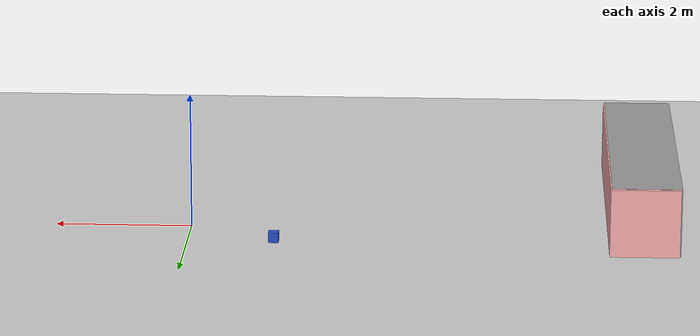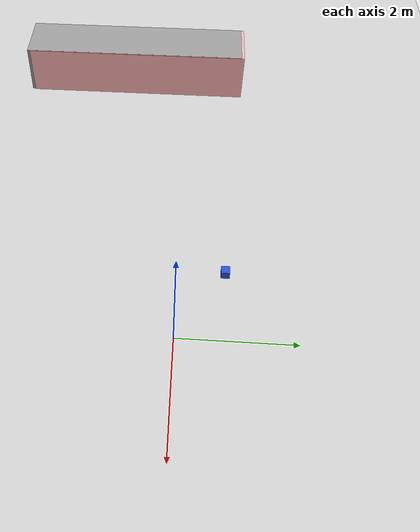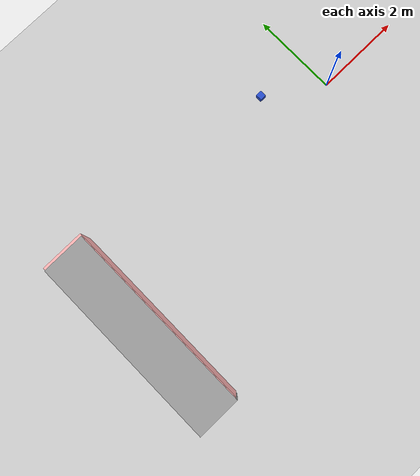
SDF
<sdf version="1.6">
 <world name="default">
  <model name="ground_plane">
   <static>1</static>
   <link name="link">
    <collision name="collision">
     <geometry><plane><normal>0 0 1</normal><size>100 100</size></plane></geometry>
     <surface><friction><ode><mu>100</mu><mu2>50</mu2></ode></friction></surface>
    </collision>
    <visual name="visual">
     <cast_shadows>0</cast_shadows>
     <geometry><plane><normal>0 0 1</normal><size>100 100</size></plane></geometry>
     <material>
      <script><uri>file://media/materials/scripts/gazebo.material</uri><name>Gazebo/Grey</name></script>
     </material>
    </visual>
   </link>
  </model>
  <model name="unit_box_0_clone_0_0_clone_clone_0">
   <link name="link">
    <inertial>
     <mass>1</mass>
     <inertia>
      <ixx>0.166667</ixx>
      <ixy>0</ixy>
      <ixz>0</ixz>
      <iyy>0.166667</iyy>
      <iyz>0</iyz>
      <izz>0.166667</izz>
     </inertia>
    </inertial>
    <visual name="visual">
     <geometry><box><size>1 4.48154 1</size></box></geometry>
     <material>
      <script><name>Gazebo/Grey</name><uri>file://media/materials/scripts/gazebo.material</uri></script>
      <ambient>0.3 0.3 0.3 1</ambient>
      <diffuse>0.7 0.7 0.7 1</diffuse>
      <specular>0.01 0.01 0.01 1</specular>
      <emissive>0 0 0 1</emissive>
     </material>
    </visual>
    <collision name="collision">
     <geometry><box><size>1 4.48154 1</size></box></geometry>
     <surface>
      <friction>
       <ode><mu>1</mu><mu2>1</mu2><fdir1>0 0 0</fdir1><slip1>0</slip1><slip2>0</slip2></ode>
       <torsional>
        <coefficient>1</coefficient>
        <patch_radius>0</patch_radius>
        <surface_radius>0</surface_radius>
        <use_patch_radius>1</use_patch_radius>
        <ode><slip>0</slip></ode>
       </torsional>
      </friction>
      <bounce><restitution_coefficient>0</restitution_coefficient><threshold>1e+06</threshold></bounce>
      <contact>
       <collide_without_contact>0</collide_without_contact>
       <collide_without_contact_bitmask>1</collide_without_contact_bitmask>
       <collide_bitmask>1</collide_bitmask>
       <ode>
        <soft_cfm>0</soft_cfm>
        <soft_erp>0.2</soft_erp>
        <kp>1e+13</kp>
        <kd>1</kd>
        <max_vel>0.01</max_vel>
        <min_depth>0</min_depth>
       </ode>
       <bullet>
        <split_impulse>1</split_impulse>
        <split_impulse_penetration_threshold>-0.01</split_impulse_penetration_threshold>
        <soft_cfm>0</soft_cfm>
        <soft_erp>0.2</soft_erp>
        <kp>1e+13</kp>
        <kd>1</kd>
       </bullet>
      </contact>
     </surface>
    </collision>
   </link>
   <static>1</static>
   <pose>-6.60353 -1.13689 0.501162 -3.14102 -0 -3e-06</pose>
  </model>
  <model name="unit_box_0_clone_0_0_0_0">
   <link name="link">
    <inertial>
     <mass>1</mass>
     <inertia>
      <ixx>0.166667</ixx>
      <ixy>0</ixy>
      <ixz>0</ixz>
      <iyy>0.166667</iyy>
      <iyz>0</iyz>
      <izz>0.166667</izz>
     </inertia>
    </inertial>
    <visual name="visual">
     <geometry><box><size>1 4.48154 1</size></box></geometry>
     <material>
      <script><name>Gazebo/Grey</name><uri>file://media/materials/scripts/gazebo.material</uri></script>
      <ambient>0.6 0.3 0.3 1</ambient>
      <diffuse>1 0.7 0.7 1</diffuse>
      <specular>0.31 0.01 0.01 1</specular>
      <emissive>0.7 0.7 0.7 1</emissive>
      <shader type="vertex"><normal_map>__default__</normal_map></shader>
     </material>
    </visual>
    <collision name="collision">
     <geometry><box><size>1 4.48154 1</size></box></geometry>
     <surface>
      <friction>
       <ode><mu>1</mu><mu2>1</mu2><fdir1>0 0 0</fdir1><slip1>0</slip1><slip2>0</slip2></ode>
       <torsional>
        <coefficient>1</coefficient>
        <patch_radius>0</patch_radius>
        <surface_radius>0</surface_radius>
        <use_patch_radius>1</use_patch_radius>
        <ode><slip>0</slip></ode>
       </torsional>
      </friction>
      <bounce><restitution_coefficient>0</restitution_coefficient><threshold>1e+06</threshold></bounce>
      <contact>
       <collide_without_contact>0</collide_without_contact>
       <collide_without_contact_bitmask>1</collide_without_contact_bitmask>
       <collide_bitmask>1</collide_bitmask>
       <ode>
        <soft_cfm>0</soft_cfm>
        <soft_erp>0.2</soft_erp>
        <kp>1e+13</kp>
        <kd>1</kd>
        <max_vel>0.01</max_vel>
        <min_depth>0</min_depth>
       </ode>
       <bullet>
        <split_impulse>1</split_impulse>
        <split_impulse_penetration_threshold>-0.01</split_impulse_penetration_threshold>
        <soft_cfm>0</soft_cfm>
        <soft_erp>0.2</soft_erp>
        <kp>1e+13</kp>
        <kd>1</kd>
       </bullet>
      </contact>
     </surface>
    </collision>
   </link>
   <static>1</static>
   <pose>-6.5853 -1.08093 0.49872 -3.14102 -0 -3e-06</pose>
  </model>
  <model name="unit_box_0_1_0_0_0_clone_0_0_0">
   <link name="link">
    <inertial>
     <mass>1</mass>
     <inertia>
      <ixx>0.166667</ixx>
      <ixy>0</ixy>
      <ixz>0</ixz>
      <iyy>0.166667</iyy>
      <iyz>0</iyz>
      <izz>0.166667</izz>
     </inertia>
    </inertial>
    <visual name="visual">
     <geometry><box><size>0.147561 0.147561 0.147561</size></box></geometry>
     <material>
      <script><name>Gazebo/Blue</name><uri>file://media/materials/scripts/gazebo.material</uri></script>
      <ambient>0 0 1 1</ambient>
      <diffuse>0.1 0.1 1 1</diffuse>
      <specular>0.01 0.01 0.01 1</specular>
      <emissive>0 0 0 1</emissive>
      <shader type="vertex"><normal_map>__default__</normal_map></shader>
     </material>
    </visual>
    <collision name="collision">
     <geometry><box><size>0.147561 0.147561 0.147561</size></box></geometry>
     <surface>
      <friction>
       <ode><mu>1</mu><mu2>1</mu2><fdir1>0 0 0</fdir1><slip1>0</slip1><slip2>0</slip2></ode>
       <torsional>
        <coefficient>1</coefficient>
        <patch_radius>0</patch_radius>
        <surface_radius>0</surface_radius>
        <use_patch_radius>1</use_patch_radius>
        <ode><slip>0</slip></ode>
       </torsional>
      </friction>
      <bounce><restitution_coefficient>0</restitution_coefficient><threshold>1e+06</threshold></bounce>
      <contact>
       <collide_without_contact>0</collide_without_contact>
       <collide_without_contact_bitmask>1</collide_without_contact_bitmask>
       <collide_bitmask>1</collide_bitmask>
       <ode>
        <soft_cfm>0</soft_cfm>
        <soft_erp>0.2</soft_erp>
        <kp>1e+13</kp>
        <kd>1</kd>
        <max_vel>0.01</max_vel>
        <min_depth>0</min_depth>
       </ode>
       <bullet>
        <split_impulse>1</split_impulse>
        <split_impulse_penetration_threshold>-0.01</split_impulse_penetration_threshold>
        <soft_cfm>0</soft_cfm>
        <soft_erp>0.2</soft_erp>
        <kp>1e+13</kp>
        <kd>1</kd>
       </bullet>
      </contact>
     </surface>
    </collision>
   </link>
   <static>0</static>
   <pose>-1.25819 0.815332 0.123779 1e-05 -1.2e-05 6e-06</pose>
  </model>
 </world>
</sdf>
